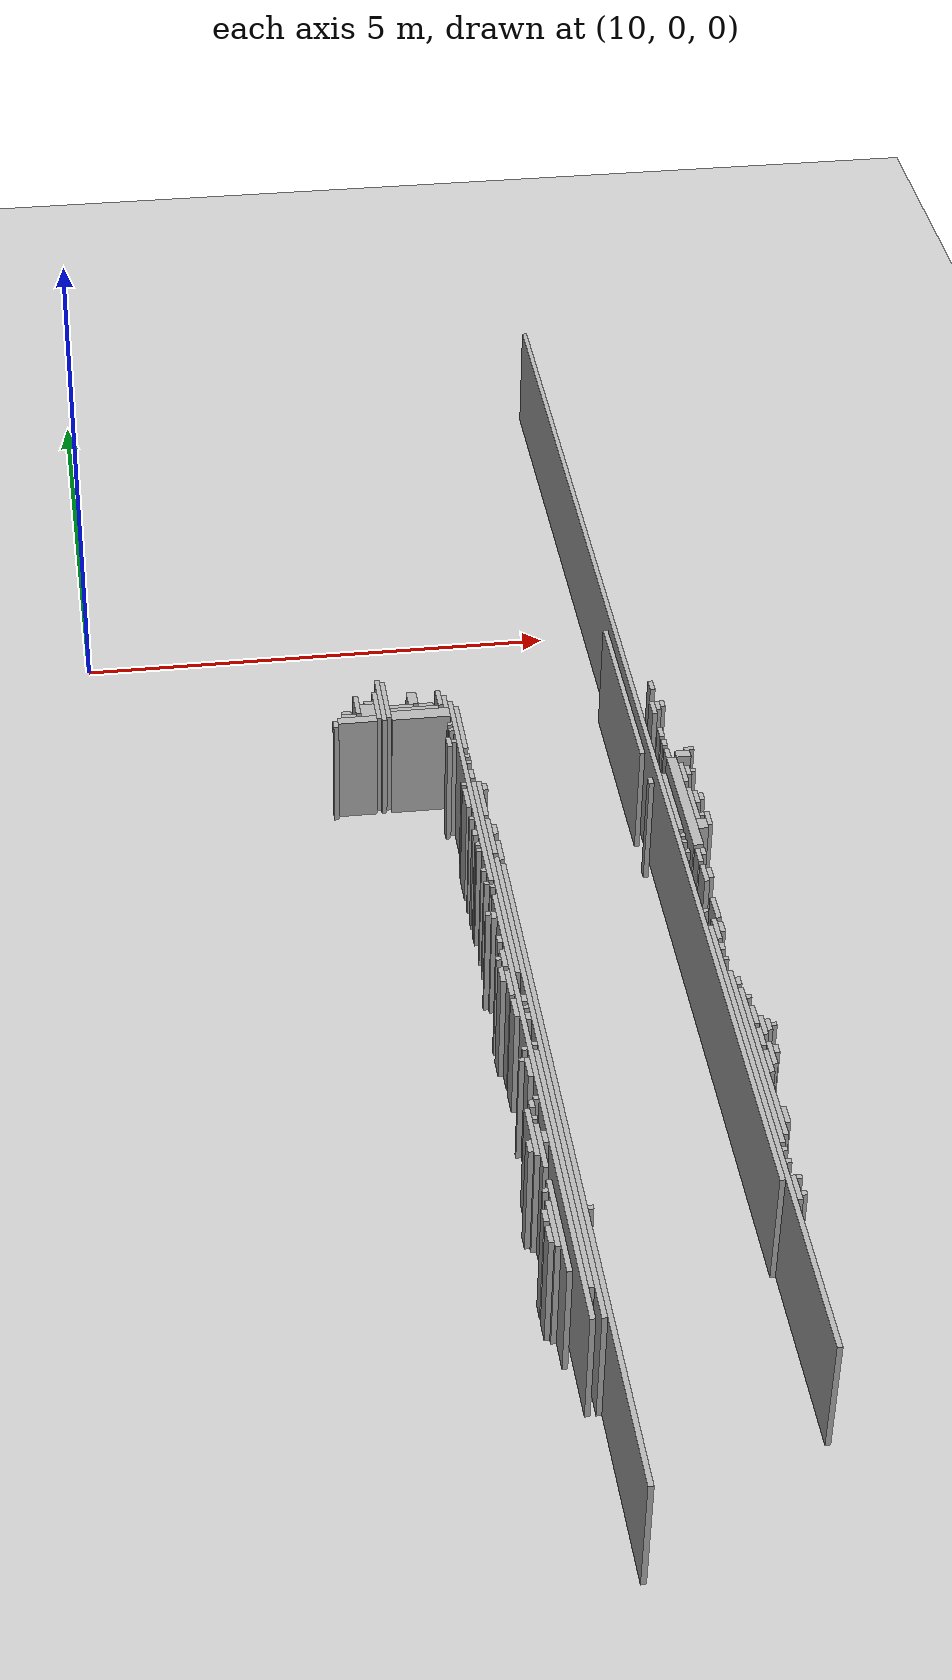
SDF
<sdf version="1.6">
 <world name="d10_floor">
  <include><uri>model://sun</uri></include>
  <include><uri>model://ground_plane</uri></include>
  <model name="d10_walls">
   <static>true</static>
   <link name="w856">
    <pose>13.750 -9.120 0.60 0 0 0</pose>
    <collision name="c"><geometry><box><size>0.050 7.750 1.20</size></box></geometry></collision>
    <visual name="v">
     <geometry><box><size>0.050 7.750 1.20</size></box></geometry>
     <material><ambient>0.6 0.6 0.6 1</ambient><diffuse>0.7 0.7 0.7 1</diffuse></material>
    </visual>
   </link>
   <link name="w945">
    <pose>15.550 -9.070 0.60 0 0 0</pose>
    <collision name="c"><geometry><box><size>0.050 5.350 1.20</size></box></geometry></collision>
    <visual name="v">
     <geometry><box><size>0.050 5.350 1.20</size></box></geometry>
     <material><ambient>0.6 0.6 0.6 1</ambient><diffuse>0.7 0.7 0.7 1</diffuse></material>
    </visual>
   </link>
   <link name="w999">
    <pose>13.600 -8.445 0.60 0 0 0</pose>
    <collision name="c"><geometry><box><size>0.050 5.500 1.20</size></box></geometry></collision>
    <visual name="v">
     <geometry><box><size>0.050 5.500 1.20</size></box></geometry>
     <material><ambient>0.6 0.6 0.6 1</ambient><diffuse>0.7 0.7 0.7 1</diffuse></material>
    </visual>
   </link>
   <link name="w1000">
    <pose>13.700 -8.170 0.60 0 0 0</pose>
    <collision name="c"><geometry><box><size>0.050 6.050 1.20</size></box></geometry></collision>
    <visual name="v">
     <geometry><box><size>0.050 6.050 1.20</size></box></geometry>
     <material><ambient>0.6 0.6 0.6 1</ambient><diffuse>0.7 0.7 0.7 1</diffuse></material>
    </visual>
   </link>
   <link name="w1030">
    <pose>13.650 -9.370 0.60 0 0 0</pose>
    <collision name="c"><geometry><box><size>0.050 2.950 1.20</size></box></geometry></collision>
    <visual name="v">
     <geometry><box><size>0.050 2.950 1.20</size></box></geometry>
     <material><ambient>0.6 0.6 0.6 1</ambient><diffuse>0.7 0.7 0.7 1</diffuse></material>
    </visual>
   </link>
   <link name="w1036">
    <pose>13.500 -10.095 0.60 0 0 0</pose>
    <collision name="c"><geometry><box><size>0.050 1.100 1.20</size></box></geometry></collision>
    <visual name="v">
     <geometry><box><size>0.050 1.100 1.20</size></box></geometry>
     <material><ambient>0.6 0.6 0.6 1</ambient><diffuse>0.7 0.7 0.7 1</diffuse></material>
    </visual>
   </link>
   <link name="w1037">
    <pose>13.450 -10.070 0.60 0 0 0</pose>
    <collision name="c"><geometry><box><size>0.050 0.550 1.20</size></box></geometry></collision>
    <visual name="v">
     <geometry><box><size>0.050 0.550 1.20</size></box></geometry>
     <material><ambient>0.6 0.6 0.6 1</ambient><diffuse>0.7 0.7 0.7 1</diffuse></material>
    </visual>
   </link>
   <link name="w1040">
    <pose>13.400 -10.195 0.60 0 0 0</pose>
    <collision name="c"><geometry><box><size>0.050 0.200 1.20</size></box></geometry></collision>
    <visual name="v">
     <geometry><box><size>0.050 0.200 1.20</size></box></geometry>
     <material><ambient>0.6 0.6 0.6 1</ambient><diffuse>0.7 0.7 0.7 1</diffuse></material>
    </visual>
   </link>
   <link name="w1044">
    <pose>13.400 -9.970 0.60 0 0 0</pose>
    <collision name="c"><geometry><box><size>0.050 0.150 1.20</size></box></geometry></collision>
    <visual name="v">
     <geometry><box><size>0.050 0.150 1.20</size></box></geometry>
     <material><ambient>0.6 0.6 0.6 1</ambient><diffuse>0.7 0.7 0.7 1</diffuse></material>
    </visual>
   </link>
   <link name="w1045">
    <pose>15.600 -9.895 0.60 0 0 0</pose>
    <collision name="c"><geometry><box><size>0.050 0.300 1.20</size></box></geometry></collision>
    <visual name="v">
     <geometry><box><size>0.050 0.300 1.20</size></box></geometry>
     <material><ambient>0.6 0.6 0.6 1</ambient><diffuse>0.7 0.7 0.7 1</diffuse></material>
    </visual>
   </link>
   <link name="w1046">
    <pose>15.650 -9.970 0.60 0 0 0</pose>
    <collision name="c"><geometry><box><size>0.050 0.050 1.20</size></box></geometry></collision>
    <visual name="v">
     <geometry><box><size>0.050 0.050 1.20</size></box></geometry>
     <material><ambient>0.6 0.6 0.6 1</ambient><diffuse>0.7 0.7 0.7 1</diffuse></material>
    </visual>
   </link>
   <link name="w1047">
    <pose>13.800 -9.920 0.60 0 0 0</pose>
    <collision name="c"><geometry><box><size>0.050 0.050 1.20</size></box></geometry></collision>
    <visual name="v">
     <geometry><box><size>0.050 0.050 1.20</size></box></geometry>
     <material><ambient>0.6 0.6 0.6 1</ambient><diffuse>0.7 0.7 0.7 1</diffuse></material>
    </visual>
   </link>
   <link name="w1049">
    <pose>15.500 -2.595 0.60 0 0 0</pose>
    <collision name="c"><geometry><box><size>0.050 14.400 1.20</size></box></geometry></collision>
    <visual name="v">
     <geometry><box><size>0.050 14.400 1.20</size></box></geometry>
     <material><ambient>0.6 0.6 0.6 1</ambient><diffuse>0.7 0.7 0.7 1</diffuse></material>
    </visual>
   </link>
   <link name="w1050">
    <pose>15.650 -9.770 0.60 0 0 0</pose>
    <collision name="c"><geometry><box><size>0.050 0.050 1.20</size></box></geometry></collision>
    <visual name="v">
     <geometry><box><size>0.050 0.050 1.20</size></box></geometry>
     <material><ambient>0.6 0.6 0.6 1</ambient><diffuse>0.7 0.7 0.7 1</diffuse></material>
    </visual>
   </link>
   <link name="w1054">
    <pose>13.450 -9.670 0.60 0 0 0</pose>
    <collision name="c"><geometry><box><size>0.050 0.050 1.20</size></box></geometry></collision>
    <visual name="v">
     <geometry><box><size>0.050 0.050 1.20</size></box></geometry>
     <material><ambient>0.6 0.6 0.6 1</ambient><diffuse>0.7 0.7 0.7 1</diffuse></material>
    </visual>
   </link>
   <link name="w1056">
    <pose>15.600 -9.570 0.60 0 0 0</pose>
    <collision name="c"><geometry><box><size>0.050 0.050 1.20</size></box></geometry></collision>
    <visual name="v">
     <geometry><box><size>0.050 0.050 1.20</size></box></geometry>
     <material><ambient>0.6 0.6 0.6 1</ambient><diffuse>0.7 0.7 0.7 1</diffuse></material>
    </visual>
   </link>
   <link name="w1057">
    <pose>15.600 -9.420 0.60 0 0 0</pose>
    <collision name="c"><geometry><box><size>0.050 0.050 1.20</size></box></geometry></collision>
    <visual name="v">
     <geometry><box><size>0.050 0.050 1.20</size></box></geometry>
     <material><ambient>0.6 0.6 0.6 1</ambient><diffuse>0.7 0.7 0.7 1</diffuse></material>
    </visual>
   </link>
   <link name="w1059">
    <pose>13.500 -9.120 0.60 0 0 0</pose>
    <collision name="c"><geometry><box><size>0.050 0.550 1.20</size></box></geometry></collision>
    <visual name="v">
     <geometry><box><size>0.050 0.550 1.20</size></box></geometry>
     <material><ambient>0.6 0.6 0.6 1</ambient><diffuse>0.7 0.7 0.7 1</diffuse></material>
    </visual>
   </link>
   <link name="w1060">
    <pose>15.600 -8.195 0.60 0 0 0</pose>
    <collision name="c"><geometry><box><size>0.050 2.300 1.20</size></box></geometry></collision>
    <visual name="v">
     <geometry><box><size>0.050 2.300 1.20</size></box></geometry>
     <material><ambient>0.6 0.6 0.6 1</ambient><diffuse>0.7 0.7 0.7 1</diffuse></material>
    </visual>
   </link>
   <link name="w1061">
    <pose>13.450 -8.945 0.60 0 0 0</pose>
    <collision name="c"><geometry><box><size>0.050 0.600 1.20</size></box></geometry></collision>
    <visual name="v">
     <geometry><box><size>0.050 0.600 1.20</size></box></geometry>
     <material><ambient>0.6 0.6 0.6 1</ambient><diffuse>0.7 0.7 0.7 1</diffuse></material>
    </visual>
   </link>
   <link name="w1062">
    <pose>15.650 -8.270 0.60 0 0 0</pose>
    <collision name="c"><geometry><box><size>0.050 1.950 1.20</size></box></geometry></collision>
    <visual name="v">
     <geometry><box><size>0.050 1.950 1.20</size></box></geometry>
     <material><ambient>0.6 0.6 0.6 1</ambient><diffuse>0.7 0.7 0.7 1</diffuse></material>
    </visual>
   </link>
   <link name="w1063">
    <pose>13.400 -9.120 0.60 0 0 0</pose>
    <collision name="c"><geometry><box><size>0.050 0.150 1.20</size></box></geometry></collision>
    <visual name="v">
     <geometry><box><size>0.050 0.150 1.20</size></box></geometry>
     <material><ambient>0.6 0.6 0.6 1</ambient><diffuse>0.7 0.7 0.7 1</diffuse></material>
    </visual>
   </link>
   <link name="w1064">
    <pose>13.550 -9.020 0.60 0 0 0</pose>
    <collision name="c"><geometry><box><size>0.050 0.150 1.20</size></box></geometry></collision>
    <visual name="v">
     <geometry><box><size>0.050 0.150 1.20</size></box></geometry>
     <material><ambient>0.6 0.6 0.6 1</ambient><diffuse>0.7 0.7 0.7 1</diffuse></material>
    </visual>
   </link>
   <link name="w1065">
    <pose>15.700 -8.995 0.60 0 0 0</pose>
    <collision name="c"><geometry><box><size>0.050 0.200 1.20</size></box></geometry></collision>
    <visual name="v">
     <geometry><box><size>0.050 0.200 1.20</size></box></geometry>
     <material><ambient>0.6 0.6 0.6 1</ambient><diffuse>0.7 0.7 0.7 1</diffuse></material>
    </visual>
   </link>
   <link name="w1067">
    <pose>13.500 -8.770 0.60 0 0 0</pose>
    <collision name="c"><geometry><box><size>0.050 0.050 1.20</size></box></geometry></collision>
    <visual name="v">
     <geometry><box><size>0.050 0.050 1.20</size></box></geometry>
     <material><ambient>0.6 0.6 0.6 1</ambient><diffuse>0.7 0.7 0.7 1</diffuse></material>
    </visual>
   </link>
   <link name="w1069">
    <pose>13.500 -8.595 0.60 0 0 0</pose>
    <collision name="c"><geometry><box><size>0.050 0.100 1.20</size></box></geometry></collision>
    <visual name="v">
     <geometry><box><size>0.050 0.100 1.20</size></box></geometry>
     <material><ambient>0.6 0.6 0.6 1</ambient><diffuse>0.7 0.7 0.7 1</diffuse></material>
    </visual>
   </link>
   <link name="w1070">
    <pose>13.550 -8.520 0.60 0 0 0</pose>
    <collision name="c"><geometry><box><size>0.050 0.050 1.20</size></box></geometry></collision>
    <visual name="v">
     <geometry><box><size>0.050 0.050 1.20</size></box></geometry>
     <material><ambient>0.6 0.6 0.6 1</ambient><diffuse>0.7 0.7 0.7 1</diffuse></material>
    </visual>
   </link>
   <link name="w1072">
    <pose>15.700 -8.295 0.60 0 0 0</pose>
    <collision name="c"><geometry><box><size>0.050 0.300 1.20</size></box></geometry></collision>
    <visual name="v">
     <geometry><box><size>0.050 0.300 1.20</size></box></geometry>
     <material><ambient>0.6 0.6 0.6 1</ambient><diffuse>0.7 0.7 0.7 1</diffuse></material>
    </visual>
   </link>
   <link name="w1073">
    <pose>15.750 -8.195 0.60 0 0 0</pose>
    <collision name="c"><geometry><box><size>0.050 0.300 1.20</size></box></geometry></collision>
    <visual name="v">
     <geometry><box><size>0.050 0.300 1.20</size></box></geometry>
     <material><ambient>0.6 0.6 0.6 1</ambient><diffuse>0.7 0.7 0.7 1</diffuse></material>
    </visual>
   </link>
   <link name="w1074">
    <pose>13.550 -8.120 0.60 0 0 0</pose>
    <collision name="c"><geometry><box><size>0.050 0.250 1.20</size></box></geometry></collision>
    <visual name="v">
     <geometry><box><size>0.050 0.250 1.20</size></box></geometry>
     <material><ambient>0.6 0.6 0.6 1</ambient><diffuse>0.7 0.7 0.7 1</diffuse></material>
    </visual>
   </link>
   <link name="w1075">
    <pose>15.800 -8.145 0.60 0 0 0</pose>
    <collision name="c"><geometry><box><size>0.050 0.100 1.20</size></box></geometry></collision>
    <visual name="v">
     <geometry><box><size>0.050 0.100 1.20</size></box></geometry>
     <material><ambient>0.6 0.6 0.6 1</ambient><diffuse>0.7 0.7 0.7 1</diffuse></material>
    </visual>
   </link>
   <link name="w1076">
    <pose>15.700 -7.970 0.60 0 0 0</pose>
    <collision name="c"><geometry><box><size>0.050 0.250 1.20</size></box></geometry></collision>
    <visual name="v">
     <geometry><box><size>0.050 0.250 1.20</size></box></geometry>
     <material><ambient>0.6 0.6 0.6 1</ambient><diffuse>0.7 0.7 0.7 1</diffuse></material>
    </visual>
   </link>
   <link name="w1077">
    <pose>13.500 -8.020 0.60 0 0 0</pose>
    <collision name="c"><geometry><box><size>0.050 0.050 1.20</size></box></geometry></collision>
    <visual name="v">
     <geometry><box><size>0.050 0.050 1.20</size></box></geometry>
     <material><ambient>0.6 0.6 0.6 1</ambient><diffuse>0.7 0.7 0.7 1</diffuse></material>
    </visual>
   </link>
   <link name="w1080">
    <pose>15.750 -7.820 0.60 0 0 0</pose>
    <collision name="c"><geometry><box><size>0.050 0.250 1.20</size></box></geometry></collision>
    <visual name="v">
     <geometry><box><size>0.050 0.250 1.20</size></box></geometry>
     <material><ambient>0.6 0.6 0.6 1</ambient><diffuse>0.7 0.7 0.7 1</diffuse></material>
    </visual>
   </link>
   <link name="w1082">
    <pose>13.550 -7.870 0.60 0 0 0</pose>
    <collision name="c"><geometry><box><size>0.050 0.050 1.20</size></box></geometry></collision>
    <visual name="v">
     <geometry><box><size>0.050 0.050 1.20</size></box></geometry>
     <material><ambient>0.6 0.6 0.6 1</ambient><diffuse>0.7 0.7 0.7 1</diffuse></material>
    </visual>
   </link>
   <link name="w1083">
    <pose>15.800 -7.820 0.60 0 0 0</pose>
    <collision name="c"><geometry><box><size>0.050 0.150 1.20</size></box></geometry></collision>
    <visual name="v">
     <geometry><box><size>0.050 0.150 1.20</size></box></geometry>
     <material><ambient>0.6 0.6 0.6 1</ambient><diffuse>0.7 0.7 0.7 1</diffuse></material>
    </visual>
   </link>
   <link name="w1084">
    <pose>13.650 -7.820 0.60 0 0 0</pose>
    <collision name="c"><geometry><box><size>0.050 0.050 1.20</size></box></geometry></collision>
    <visual name="v">
     <geometry><box><size>0.050 0.050 1.20</size></box></geometry>
     <material><ambient>0.6 0.6 0.6 1</ambient><diffuse>0.7 0.7 0.7 1</diffuse></material>
    </visual>
   </link>
   <link name="w1085">
    <pose>15.850 -7.820 0.60 0 0 0</pose>
    <collision name="c"><geometry><box><size>0.050 0.050 1.20</size></box></geometry></collision>
    <visual name="v">
     <geometry><box><size>0.050 0.050 1.20</size></box></geometry>
     <material><ambient>0.6 0.6 0.6 1</ambient><diffuse>0.7 0.7 0.7 1</diffuse></material>
    </visual>
   </link>
   <link name="w1086">
    <pose>15.700 -7.670 0.60 0 0 0</pose>
    <collision name="c"><geometry><box><size>0.050 0.250 1.20</size></box></geometry></collision>
    <visual name="v">
     <geometry><box><size>0.050 0.250 1.20</size></box></geometry>
     <material><ambient>0.6 0.6 0.6 1</ambient><diffuse>0.7 0.7 0.7 1</diffuse></material>
    </visual>
   </link>
   <link name="w1091">
    <pose>13.650 -7.445 0.60 0 0 0</pose>
    <collision name="c"><geometry><box><size>0.050 0.100 1.20</size></box></geometry></collision>
    <visual name="v">
     <geometry><box><size>0.050 0.100 1.20</size></box></geometry>
     <material><ambient>0.6 0.6 0.6 1</ambient><diffuse>0.7 0.7 0.7 1</diffuse></material>
    </visual>
   </link>
   <link name="w1092">
    <pose>13.550 -7.320 0.60 0 0 0</pose>
    <collision name="c"><geometry><box><size>0.050 0.250 1.20</size></box></geometry></collision>
    <visual name="v">
     <geometry><box><size>0.050 0.250 1.20</size></box></geometry>
     <material><ambient>0.6 0.6 0.6 1</ambient><diffuse>0.7 0.7 0.7 1</diffuse></material>
    </visual>
   </link>
   <link name="w1093">
    <pose>15.700 -7.420 0.60 0 0 0</pose>
    <collision name="c"><geometry><box><size>0.050 0.050 1.20</size></box></geometry></collision>
    <visual name="v">
     <geometry><box><size>0.050 0.050 1.20</size></box></geometry>
     <material><ambient>0.6 0.6 0.6 1</ambient><diffuse>0.7 0.7 0.7 1</diffuse></material>
    </visual>
   </link>
   <link name="w1096">
    <pose>13.650 -7.320 0.60 0 0 0</pose>
    <collision name="c"><geometry><box><size>0.050 0.050 1.20</size></box></geometry></collision>
    <visual name="v">
     <geometry><box><size>0.050 0.050 1.20</size></box></geometry>
     <material><ambient>0.6 0.6 0.6 1</ambient><diffuse>0.7 0.7 0.7 1</diffuse></material>
    </visual>
   </link>
   <link name="w1099">
    <pose>13.650 -7.195 0.60 0 0 0</pose>
    <collision name="c"><geometry><box><size>0.050 0.100 1.20</size></box></geometry></collision>
    <visual name="v">
     <geometry><box><size>0.050 0.100 1.20</size></box></geometry>
     <material><ambient>0.6 0.6 0.6 1</ambient><diffuse>0.7 0.7 0.7 1</diffuse></material>
    </visual>
   </link>
   <link name="w1100">
    <pose>15.650 -7.195 0.60 0 0 0</pose>
    <collision name="c"><geometry><box><size>0.050 0.100 1.20</size></box></geometry></collision>
    <visual name="v">
     <geometry><box><size>0.050 0.100 1.20</size></box></geometry>
     <material><ambient>0.6 0.6 0.6 1</ambient><diffuse>0.7 0.7 0.7 1</diffuse></material>
    </visual>
   </link>
   <link name="w1102">
    <pose>13.550 -6.970 0.60 0 0 0</pose>
    <collision name="c"><geometry><box><size>0.050 0.350 1.20</size></box></geometry></collision>
    <visual name="v">
     <geometry><box><size>0.050 0.350 1.20</size></box></geometry>
     <material><ambient>0.6 0.6 0.6 1</ambient><diffuse>0.7 0.7 0.7 1</diffuse></material>
    </visual>
   </link>
   <link name="w1106">
    <pose>13.500 -6.845 0.60 0 0 0</pose>
    <collision name="c"><geometry><box><size>0.050 0.200 1.20</size></box></geometry></collision>
    <visual name="v">
     <geometry><box><size>0.050 0.200 1.20</size></box></geometry>
     <material><ambient>0.6 0.6 0.6 1</ambient><diffuse>0.7 0.7 0.7 1</diffuse></material>
    </visual>
   </link>
   <link name="w1107">
    <pose>15.600 -6.870 0.60 0 0 0</pose>
    <collision name="c"><geometry><box><size>0.050 0.050 1.20</size></box></geometry></collision>
    <visual name="v">
     <geometry><box><size>0.050 0.050 1.20</size></box></geometry>
     <material><ambient>0.6 0.6 0.6 1</ambient><diffuse>0.7 0.7 0.7 1</diffuse></material>
    </visual>
   </link>
   <link name="w1108">
    <pose>13.650 -5.395 0.60 0 0 0</pose>
    <collision name="c"><geometry><box><size>0.050 2.900 1.20</size></box></geometry></collision>
    <visual name="v">
     <geometry><box><size>0.050 2.900 1.20</size></box></geometry>
     <material><ambient>0.6 0.6 0.6 1</ambient><diffuse>0.7 0.7 0.7 1</diffuse></material>
    </visual>
   </link>
   <link name="w1110">
    <pose>13.550 -6.620 0.60 0 0 0</pose>
    <collision name="c"><geometry><box><size>0.050 0.250 1.20</size></box></geometry></collision>
    <visual name="v">
     <geometry><box><size>0.050 0.250 1.20</size></box></geometry>
     <material><ambient>0.6 0.6 0.6 1</ambient><diffuse>0.7 0.7 0.7 1</diffuse></material>
    </visual>
   </link>
   <link name="w1111">
    <pose>15.600 -6.695 0.60 0 0 0</pose>
    <collision name="c"><geometry><box><size>0.050 0.100 1.20</size></box></geometry></collision>
    <visual name="v">
     <geometry><box><size>0.050 0.100 1.20</size></box></geometry>
     <material><ambient>0.6 0.6 0.6 1</ambient><diffuse>0.7 0.7 0.7 1</diffuse></material>
    </visual>
   </link>
   <link name="w1113">
    <pose>13.500 -6.620 0.60 0 0 0</pose>
    <collision name="c"><geometry><box><size>0.050 0.050 1.20</size></box></geometry></collision>
    <visual name="v">
     <geometry><box><size>0.050 0.050 1.20</size></box></geometry>
     <material><ambient>0.6 0.6 0.6 1</ambient><diffuse>0.7 0.7 0.7 1</diffuse></material>
    </visual>
   </link>
   <link name="w1114">
    <pose>15.600 -6.445 0.60 0 0 0</pose>
    <collision name="c"><geometry><box><size>0.050 0.300 1.20</size></box></geometry></collision>
    <visual name="v">
     <geometry><box><size>0.050 0.300 1.20</size></box></geometry>
     <material><ambient>0.6 0.6 0.6 1</ambient><diffuse>0.7 0.7 0.7 1</diffuse></material>
    </visual>
   </link>
   <link name="w1115">
    <pose>15.650 -6.420 0.60 0 0 0</pose>
    <collision name="c"><geometry><box><size>0.050 0.150 1.20</size></box></geometry></collision>
    <visual name="v">
     <geometry><box><size>0.050 0.150 1.20</size></box></geometry>
     <material><ambient>0.6 0.6 0.6 1</ambient><diffuse>0.7 0.7 0.7 1</diffuse></material>
    </visual>
   </link>
   <link name="w1117">
    <pose>13.550 -6.345 0.60 0 0 0</pose>
    <collision name="c"><geometry><box><size>0.050 0.100 1.20</size></box></geometry></collision>
    <visual name="v">
     <geometry><box><size>0.050 0.100 1.20</size></box></geometry>
     <material><ambient>0.6 0.6 0.6 1</ambient><diffuse>0.7 0.7 0.7 1</diffuse></material>
    </visual>
   </link>
   <link name="w1119">
    <pose>15.650 -6.145 0.60 0 0 0</pose>
    <collision name="c"><geometry><box><size>0.050 0.300 1.20</size></box></geometry></collision>
    <visual name="v">
     <geometry><box><size>0.050 0.300 1.20</size></box></geometry>
     <material><ambient>0.6 0.6 0.6 1</ambient><diffuse>0.7 0.7 0.7 1</diffuse></material>
    </visual>
   </link>
   <link name="w1121">
    <pose>15.550 -6.170 0.60 0 0 0</pose>
    <collision name="c"><geometry><box><size>0.050 0.050 1.20</size></box></geometry></collision>
    <visual name="v">
     <geometry><box><size>0.050 0.050 1.20</size></box></geometry>
     <material><ambient>0.6 0.6 0.6 1</ambient><diffuse>0.7 0.7 0.7 1</diffuse></material>
    </visual>
   </link>
   <link name="w1125">
    <pose>13.550 -5.995 0.60 0 0 0</pose>
    <collision name="c"><geometry><box><size>0.050 0.100 1.20</size></box></geometry></collision>
    <visual name="v">
     <geometry><box><size>0.050 0.100 1.20</size></box></geometry>
     <material><ambient>0.6 0.6 0.6 1</ambient><diffuse>0.7 0.7 0.7 1</diffuse></material>
    </visual>
   </link>
   <link name="w1127">
    <pose>13.500 -5.970 0.60 0 0 0</pose>
    <collision name="c"><geometry><box><size>0.050 0.050 1.20</size></box></geometry></collision>
    <visual name="v">
     <geometry><box><size>0.050 0.050 1.20</size></box></geometry>
     <material><ambient>0.6 0.6 0.6 1</ambient><diffuse>0.7 0.7 0.7 1</diffuse></material>
    </visual>
   </link>
   <link name="w1132">
    <pose>15.650 -5.620 0.60 0 0 0</pose>
    <collision name="c"><geometry><box><size>0.050 0.250 1.20</size></box></geometry></collision>
    <visual name="v">
     <geometry><box><size>0.050 0.250 1.20</size></box></geometry>
     <material><ambient>0.6 0.6 0.6 1</ambient><diffuse>0.7 0.7 0.7 1</diffuse></material>
    </visual>
   </link>
   <link name="w1133">
    <pose>15.700 -5.620 0.60 0 0 0</pose>
    <collision name="c"><geometry><box><size>0.050 0.150 1.20</size></box></geometry></collision>
    <visual name="v">
     <geometry><box><size>0.050 0.150 1.20</size></box></geometry>
     <material><ambient>0.6 0.6 0.6 1</ambient><diffuse>0.7 0.7 0.7 1</diffuse></material>
    </visual>
   </link>
   <link name="w1134">
    <pose>13.600 -5.570 0.60 0 0 0</pose>
    <collision name="c"><geometry><box><size>0.050 0.050 1.20</size></box></geometry></collision>
    <visual name="v">
     <geometry><box><size>0.050 0.050 1.20</size></box></geometry>
     <material><ambient>0.6 0.6 0.6 1</ambient><diffuse>0.7 0.7 0.7 1</diffuse></material>
    </visual>
   </link>
   <link name="w1136">
    <pose>13.550 -5.520 0.60 0 0 0</pose>
    <collision name="c"><geometry><box><size>0.050 0.050 1.20</size></box></geometry></collision>
    <visual name="v">
     <geometry><box><size>0.050 0.050 1.20</size></box></geometry>
     <material><ambient>0.6 0.6 0.6 1</ambient><diffuse>0.7 0.7 0.7 1</diffuse></material>
    </visual>
   </link>
   <link name="w1138">
    <pose>13.600 -4.045 0.60 0 0 0</pose>
    <collision name="c"><geometry><box><size>0.050 2.900 1.20</size></box></geometry></collision>
    <visual name="v">
     <geometry><box><size>0.050 2.900 1.20</size></box></geometry>
     <material><ambient>0.6 0.6 0.6 1</ambient><diffuse>0.7 0.7 0.7 1</diffuse></material>
    </visual>
   </link>
   <link name="w1140">
    <pose>15.650 -5.345 0.60 0 0 0</pose>
    <collision name="c"><geometry><box><size>0.050 0.200 1.20</size></box></geometry></collision>
    <visual name="v">
     <geometry><box><size>0.050 0.200 1.20</size></box></geometry>
     <material><ambient>0.6 0.6 0.6 1</ambient><diffuse>0.7 0.7 0.7 1</diffuse></material>
    </visual>
   </link>
   <link name="w1143">
    <pose>13.550 -5.320 0.60 0 0 0</pose>
    <collision name="c"><geometry><box><size>0.050 0.050 1.20</size></box></geometry></collision>
    <visual name="v">
     <geometry><box><size>0.050 0.050 1.20</size></box></geometry>
     <material><ambient>0.6 0.6 0.6 1</ambient><diffuse>0.7 0.7 0.7 1</diffuse></material>
    </visual>
   </link>
   <link name="w1144">
    <pose>15.700 -5.295 0.60 0 0 0</pose>
    <collision name="c"><geometry><box><size>0.050 0.100 1.20</size></box></geometry></collision>
    <visual name="v">
     <geometry><box><size>0.050 0.100 1.20</size></box></geometry>
     <material><ambient>0.6 0.6 0.6 1</ambient><diffuse>0.7 0.7 0.7 1</diffuse></material>
    </visual>
   </link>
   <link name="w1145">
    <pose>15.550 -5.270 0.60 0 0 0</pose>
    <collision name="c"><geometry><box><size>0.050 0.050 1.20</size></box></geometry></collision>
    <visual name="v">
     <geometry><box><size>0.050 0.050 1.20</size></box></geometry>
     <material><ambient>0.6 0.6 0.6 1</ambient><diffuse>0.7 0.7 0.7 1</diffuse></material>
    </visual>
   </link>
   <link name="w1146">
    <pose>13.750 -5.045 0.60 0 0 0</pose>
    <collision name="c"><geometry><box><size>0.050 0.300 1.20</size></box></geometry></collision>
    <visual name="v">
     <geometry><box><size>0.050 0.300 1.20</size></box></geometry>
     <material><ambient>0.6 0.6 0.6 1</ambient><diffuse>0.7 0.7 0.7 1</diffuse></material>
    </visual>
   </link>
   <link name="w1147">
    <pose>15.675 -4.495 0.60 0 0 0</pose>
    <collision name="c"><geometry><box><size>0.100 1.400 1.20</size></box></geometry></collision>
    <visual name="v">
     <geometry><box><size>0.100 1.400 1.20</size></box></geometry>
     <material><ambient>0.6 0.6 0.6 1</ambient><diffuse>0.7 0.7 0.7 1</diffuse></material>
    </visual>
   </link>
   <link name="w1148">
    <pose>15.550 -5.120 0.60 0 0 0</pose>
    <collision name="c"><geometry><box><size>0.050 0.050 1.20</size></box></geometry></collision>
    <visual name="v">
     <geometry><box><size>0.050 0.050 1.20</size></box></geometry>
     <material><ambient>0.6 0.6 0.6 1</ambient><diffuse>0.7 0.7 0.7 1</diffuse></material>
    </visual>
   </link>
   <link name="w1149">
    <pose>13.700 -4.820 0.60 0 0 0</pose>
    <collision name="c"><geometry><box><size>0.050 0.550 1.20</size></box></geometry></collision>
    <visual name="v">
     <geometry><box><size>0.050 0.550 1.20</size></box></geometry>
     <material><ambient>0.6 0.6 0.6 1</ambient><diffuse>0.7 0.7 0.7 1</diffuse></material>
    </visual>
   </link>
   <link name="w1150">
    <pose>13.550 -5.020 0.60 0 0 0</pose>
    <collision name="c"><geometry><box><size>0.050 0.050 1.20</size></box></geometry></collision>
    <visual name="v">
     <geometry><box><size>0.050 0.050 1.20</size></box></geometry>
     <material><ambient>0.6 0.6 0.6 1</ambient><diffuse>0.7 0.7 0.7 1</diffuse></material>
    </visual>
   </link>
   <link name="w1151">
    <pose>15.550 -5.020 0.60 0 0 0</pose>
    <collision name="c"><geometry><box><size>0.050 0.050 1.20</size></box></geometry></collision>
    <visual name="v">
     <geometry><box><size>0.050 0.050 1.20</size></box></geometry>
     <material><ambient>0.6 0.6 0.6 1</ambient><diffuse>0.7 0.7 0.7 1</diffuse></material>
    </visual>
   </link>
   <link name="w1153">
    <pose>13.550 -4.920 0.60 0 0 0</pose>
    <collision name="c"><geometry><box><size>0.050 0.050 1.20</size></box></geometry></collision>
    <visual name="v">
     <geometry><box><size>0.050 0.050 1.20</size></box></geometry>
     <material><ambient>0.6 0.6 0.6 1</ambient><diffuse>0.7 0.7 0.7 1</diffuse></material>
    </visual>
   </link>
   <link name="w1154">
    <pose>15.550 -4.495 0.60 0 0 0</pose>
    <collision name="c"><geometry><box><size>0.050 0.900 1.20</size></box></geometry></collision>
    <visual name="v">
     <geometry><box><size>0.050 0.900 1.20</size></box></geometry>
     <material><ambient>0.6 0.6 0.6 1</ambient><diffuse>0.7 0.7 0.7 1</diffuse></material>
    </visual>
   </link>
   <link name="w1155">
    <pose>15.775 -4.870 0.60 0 0 0</pose>
    <collision name="c"><geometry><box><size>0.100 0.150 1.20</size></box></geometry></collision>
    <visual name="v">
     <geometry><box><size>0.100 0.150 1.20</size></box></geometry>
     <material><ambient>0.6 0.6 0.6 1</ambient><diffuse>0.7 0.7 0.7 1</diffuse></material>
    </visual>
   </link>
   <link name="w1157">
    <pose>15.850 -4.795 0.60 0 0 0</pose>
    <collision name="c"><geometry><box><size>0.050 0.200 1.20</size></box></geometry></collision>
    <visual name="v">
     <geometry><box><size>0.050 0.200 1.20</size></box></geometry>
     <material><ambient>0.6 0.6 0.6 1</ambient><diffuse>0.7 0.7 0.7 1</diffuse></material>
    </visual>
   </link>
   <link name="w1159">
    <pose>13.550 -4.745 0.60 0 0 0</pose>
    <collision name="c"><geometry><box><size>0.050 0.100 1.20</size></box></geometry></collision>
    <visual name="v">
     <geometry><box><size>0.050 0.100 1.20</size></box></geometry>
     <material><ambient>0.6 0.6 0.6 1</ambient><diffuse>0.7 0.7 0.7 1</diffuse></material>
    </visual>
   </link>
   <link name="w1160">
    <pose>13.750 -4.720 0.60 0 0 0</pose>
    <collision name="c"><geometry><box><size>0.050 0.150 1.20</size></box></geometry></collision>
    <visual name="v">
     <geometry><box><size>0.050 0.150 1.20</size></box></geometry>
     <material><ambient>0.6 0.6 0.6 1</ambient><diffuse>0.7 0.7 0.7 1</diffuse></material>
    </visual>
   </link>
   <link name="w1161">
    <pose>15.750 -4.545 0.60 0 0 0</pose>
    <collision name="c"><geometry><box><size>0.050 0.500 1.20</size></box></geometry></collision>
    <visual name="v">
     <geometry><box><size>0.050 0.500 1.20</size></box></geometry>
     <material><ambient>0.6 0.6 0.6 1</ambient><diffuse>0.7 0.7 0.7 1</diffuse></material>
    </visual>
   </link>
   <link name="w1164">
    <pose>15.800 -4.720 0.60 0 0 0</pose>
    <collision name="c"><geometry><box><size>0.050 0.050 1.20</size></box></geometry></collision>
    <visual name="v">
     <geometry><box><size>0.050 0.050 1.20</size></box></geometry>
     <material><ambient>0.6 0.6 0.6 1</ambient><diffuse>0.7 0.7 0.7 1</diffuse></material>
    </visual>
   </link>
   <link name="w1168">
    <pose>13.550 -4.520 0.60 0 0 0</pose>
    <collision name="c"><geometry><box><size>0.050 0.050 1.20</size></box></geometry></collision>
    <visual name="v">
     <geometry><box><size>0.050 0.050 1.20</size></box></geometry>
     <material><ambient>0.6 0.6 0.6 1</ambient><diffuse>0.7 0.7 0.7 1</diffuse></material>
    </visual>
   </link>
   <link name="w1169">
    <pose>15.800 -4.445 0.60 0 0 0</pose>
    <collision name="c"><geometry><box><size>0.050 0.200 1.20</size></box></geometry></collision>
    <visual name="v">
     <geometry><box><size>0.050 0.200 1.20</size></box></geometry>
     <material><ambient>0.6 0.6 0.6 1</ambient><diffuse>0.7 0.7 0.7 1</diffuse></material>
    </visual>
   </link>
   <link name="w1171">
    <pose>13.700 -4.220 0.60 0 0 0</pose>
    <collision name="c"><geometry><box><size>0.050 0.550 1.20</size></box></geometry></collision>
    <visual name="v">
     <geometry><box><size>0.050 0.550 1.20</size></box></geometry>
     <material><ambient>0.6 0.6 0.6 1</ambient><diffuse>0.7 0.7 0.7 1</diffuse></material>
    </visual>
   </link>
   <link name="w1172">
    <pose>15.850 -4.445 0.60 0 0 0</pose>
    <collision name="c"><geometry><box><size>0.050 0.100 1.20</size></box></geometry></collision>
    <visual name="v">
     <geometry><box><size>0.050 0.100 1.20</size></box></geometry>
     <material><ambient>0.6 0.6 0.6 1</ambient><diffuse>0.7 0.7 0.7 1</diffuse></material>
    </visual>
   </link>
   <link name="w1174">
    <pose>13.550 -4.195 0.60 0 0 0</pose>
    <collision name="c"><geometry><box><size>0.050 0.300 1.20</size></box></geometry></collision>
    <visual name="v">
     <geometry><box><size>0.050 0.300 1.20</size></box></geometry>
     <material><ambient>0.6 0.6 0.6 1</ambient><diffuse>0.7 0.7 0.7 1</diffuse></material>
    </visual>
   </link>
   <link name="w1176">
    <pose>15.400 -4.145 0.60 0 0 0</pose>
    <collision name="c"><geometry><box><size>0.050 0.100 1.20</size></box></geometry></collision>
    <visual name="v">
     <geometry><box><size>0.050 0.100 1.20</size></box></geometry>
     <material><ambient>0.6 0.6 0.6 1</ambient><diffuse>0.7 0.7 0.7 1</diffuse></material>
    </visual>
   </link>
   <link name="w1177">
    <pose>15.750 -4.045 0.60 0 0 0</pose>
    <collision name="c"><geometry><box><size>0.050 0.300 1.20</size></box></geometry></collision>
    <visual name="v">
     <geometry><box><size>0.050 0.300 1.20</size></box></geometry>
     <material><ambient>0.6 0.6 0.6 1</ambient><diffuse>0.7 0.7 0.7 1</diffuse></material>
    </visual>
   </link>
   <link name="w1182">
    <pose>13.750 -4.045 0.60 0 0 0</pose>
    <collision name="c"><geometry><box><size>0.050 0.100 1.20</size></box></geometry></collision>
    <visual name="v">
     <geometry><box><size>0.050 0.100 1.20</size></box></geometry>
     <material><ambient>0.6 0.6 0.6 1</ambient><diffuse>0.7 0.7 0.7 1</diffuse></material>
    </visual>
   </link>
   <link name="w1183">
    <pose>15.800 -4.020 0.60 0 0 0</pose>
    <collision name="c"><geometry><box><size>0.050 0.150 1.20</size></box></geometry></collision>
    <visual name="v">
     <geometry><box><size>0.050 0.150 1.20</size></box></geometry>
     <material><ambient>0.6 0.6 0.6 1</ambient><diffuse>0.7 0.7 0.7 1</diffuse></material>
    </visual>
   </link>
   <link name="w1184">
    <pose>15.850 -4.020 0.60 0 0 0</pose>
    <collision name="c"><geometry><box><size>0.050 0.050 1.20</size></box></geometry></collision>
    <visual name="v">
     <geometry><box><size>0.050 0.050 1.20</size></box></geometry>
     <material><ambient>0.6 0.6 0.6 1</ambient><diffuse>0.7 0.7 0.7 1</diffuse></material>
    </visual>
   </link>
   <link name="w1186">
    <pose>13.550 -3.970 0.60 0 0 0</pose>
    <collision name="c"><geometry><box><size>0.050 0.050 1.20</size></box></geometry></collision>
    <visual name="v">
     <geometry><box><size>0.050 0.050 1.20</size></box></geometry>
     <material><ambient>0.6 0.6 0.6 1</ambient><diffuse>0.7 0.7 0.7 1</diffuse></material>
    </visual>
   </link>
   <link name="w1189">
    <pose>13.650 -3.820 0.60 0 0 0</pose>
    <collision name="c"><geometry><box><size>0.050 0.150 1.20</size></box></geometry></collision>
    <visual name="v">
     <geometry><box><size>0.050 0.150 1.20</size></box></geometry>
     <material><ambient>0.6 0.6 0.6 1</ambient><diffuse>0.7 0.7 0.7 1</diffuse></material>
    </visual>
   </link>
   <link name="w1190">
    <pose>15.650 -3.720 0.60 0 0 0</pose>
    <collision name="c"><geometry><box><size>0.050 0.150 1.20</size></box></geometry></collision>
    <visual name="v">
     <geometry><box><size>0.050 0.150 1.20</size></box></geometry>
     <material><ambient>0.6 0.6 0.6 1</ambient><diffuse>0.7 0.7 0.7 1</diffuse></material>
    </visual>
   </link>
   <link name="w1191">
    <pose>15.800 -3.745 0.60 0 0 0</pose>
    <collision name="c"><geometry><box><size>0.150 0.100 1.20</size></box></geometry></collision>
    <visual name="v">
     <geometry><box><size>0.150 0.100 1.20</size></box></geometry>
     <material><ambient>0.6 0.6 0.6 1</ambient><diffuse>0.7 0.7 0.7 1</diffuse></material>
    </visual>
   </link>
   <link name="w1193">
    <pose>15.400 -2.620 0.60 0 0 0</pose>
    <collision name="c"><geometry><box><size>0.050 2.150 1.20</size></box></geometry></collision>
    <visual name="v">
     <geometry><box><size>0.050 2.150 1.20</size></box></geometry>
     <material><ambient>0.6 0.6 0.6 1</ambient><diffuse>0.7 0.7 0.7 1</diffuse></material>
    </visual>
   </link>
   <link name="w1194">
    <pose>15.875 -3.670 0.60 0 0 0</pose>
    <collision name="c"><geometry><box><size>0.100 0.050 1.20</size></box></geometry></collision>
    <visual name="v">
     <geometry><box><size>0.100 0.050 1.20</size></box></geometry>
     <material><ambient>0.6 0.6 0.6 1</ambient><diffuse>0.7 0.7 0.7 1</diffuse></material>
    </visual>
   </link>
   <link name="w1197">
    <pose>13.650 -3.620 0.60 0 0 0</pose>
    <collision name="c"><geometry><box><size>0.050 0.050 1.20</size></box></geometry></collision>
    <visual name="v">
     <geometry><box><size>0.050 0.050 1.20</size></box></geometry>
     <material><ambient>0.6 0.6 0.6 1</ambient><diffuse>0.7 0.7 0.7 1</diffuse></material>
    </visual>
   </link>
   <link name="w1199">
    <pose>15.650 -3.545 0.60 0 0 0</pose>
    <collision name="c"><geometry><box><size>0.050 0.100 1.20</size></box></geometry></collision>
    <visual name="v">
     <geometry><box><size>0.050 0.100 1.20</size></box></geometry>
     <material><ambient>0.6 0.6 0.6 1</ambient><diffuse>0.7 0.7 0.7 1</diffuse></material>
    </visual>
   </link>
   <link name="w1202">
    <pose>13.650 -3.520 0.60 0 0 0</pose>
    <collision name="c"><geometry><box><size>0.050 0.050 1.20</size></box></geometry></collision>
    <visual name="v">
     <geometry><box><size>0.050 0.050 1.20</size></box></geometry>
     <material><ambient>0.6 0.6 0.6 1</ambient><diffuse>0.7 0.7 0.7 1</diffuse></material>
    </visual>
   </link>
   <link name="w1203">
    <pose>15.650 -3.370 0.60 0 0 0</pose>
    <collision name="c"><geometry><box><size>0.050 0.150 1.20</size></box></geometry></collision>
    <visual name="v">
     <geometry><box><size>0.050 0.150 1.20</size></box></geometry>
     <material><ambient>0.6 0.6 0.6 1</ambient><diffuse>0.7 0.7 0.7 1</diffuse></material>
    </visual>
   </link>
   <link name="w1204">
    <pose>13.650 -3.045 0.60 0 0 0</pose>
    <collision name="c"><geometry><box><size>0.050 0.700 1.20</size></box></geometry></collision>
    <visual name="v">
     <geometry><box><size>0.050 0.700 1.20</size></box></geometry>
     <material><ambient>0.6 0.6 0.6 1</ambient><diffuse>0.7 0.7 0.7 1</diffuse></material>
    </visual>
   </link>
   <link name="w1206">
    <pose>13.500 -3.270 0.60 0 0 0</pose>
    <collision name="c"><geometry><box><size>0.050 0.150 1.20</size></box></geometry></collision>
    <visual name="v">
     <geometry><box><size>0.050 0.150 1.20</size></box></geometry>
     <material><ambient>0.6 0.6 0.6 1</ambient><diffuse>0.7 0.7 0.7 1</diffuse></material>
    </visual>
   </link>
   <link name="w1208">
    <pose>13.550 -3.270 0.60 0 0 0</pose>
    <collision name="c"><geometry><box><size>0.050 0.050 1.20</size></box></geometry></collision>
    <visual name="v">
     <geometry><box><size>0.050 0.050 1.20</size></box></geometry>
     <material><ambient>0.6 0.6 0.6 1</ambient><diffuse>0.7 0.7 0.7 1</diffuse></material>
    </visual>
   </link>
   <link name="w1210">
    <pose>13.550 -3.070 0.60 0 0 0</pose>
    <collision name="c"><geometry><box><size>0.050 0.050 1.20</size></box></geometry></collision>
    <visual name="v">
     <geometry><box><size>0.050 0.050 1.20</size></box></geometry>
     <material><ambient>0.6 0.6 0.6 1</ambient><diffuse>0.7 0.7 0.7 1</diffuse></material>
    </visual>
   </link>
   <link name="w1212">
    <pose>15.650 -2.945 0.60 0 0 0</pose>
    <collision name="c"><geometry><box><size>0.050 0.200 1.20</size></box></geometry></collision>
    <visual name="v">
     <geometry><box><size>0.050 0.200 1.20</size></box></geometry>
     <material><ambient>0.6 0.6 0.6 1</ambient><diffuse>0.7 0.7 0.7 1</diffuse></material>
    </visual>
   </link>
   <link name="w1213">
    <pose>13.550 -2.970 0.60 0 0 0</pose>
    <collision name="c"><geometry><box><size>0.050 0.050 1.20</size></box></geometry></collision>
    <visual name="v">
     <geometry><box><size>0.050 0.050 1.20</size></box></geometry>
     <material><ambient>0.6 0.6 0.6 1</ambient><diffuse>0.7 0.7 0.7 1</diffuse></material>
    </visual>
   </link>
   <link name="w1214">
    <pose>15.700 -2.920 0.60 0 0 0</pose>
    <collision name="c"><geometry><box><size>0.050 0.150 1.20</size></box></geometry></collision>
    <visual name="v">
     <geometry><box><size>0.050 0.150 1.20</size></box></geometry>
     <material><ambient>0.6 0.6 0.6 1</ambient><diffuse>0.7 0.7 0.7 1</diffuse></material>
    </visual>
   </link>
   <link name="w1216">
    <pose>15.750 -2.895 0.60 0 0 0</pose>
    <collision name="c"><geometry><box><size>0.050 0.100 1.20</size></box></geometry></collision>
    <visual name="v">
     <geometry><box><size>0.050 0.100 1.20</size></box></geometry>
     <material><ambient>0.6 0.6 0.6 1</ambient><diffuse>0.7 0.7 0.7 1</diffuse></material>
    </visual>
   </link>
   <link name="w1217">
    <pose>12.400 -2.845 0.60 0 0 0</pose>
    <collision name="c"><geometry><box><size>0.050 0.100 1.20</size></box></geometry></collision>
    <visual name="v">
     <geometry><box><size>0.050 0.100 1.20</size></box></geometry>
     <material><ambient>0.6 0.6 0.6 1</ambient><diffuse>0.7 0.7 0.7 1</diffuse></material>
    </visual>
   </link>
   <link name="w1219">
    <pose>12.625 -2.795 0.60 0 0 0</pose>
    <collision name="c"><geometry><box><size>0.400 0.100 1.20</size></box></geometry></collision>
    <visual name="v">
     <geometry><box><size>0.400 0.100 1.20</size></box></geometry>
     <material><ambient>0.6 0.6 0.6 1</ambient><diffuse>0.7 0.7 0.7 1</diffuse></material>
    </visual>
   </link>
   <link name="w1220">
    <pose>12.900 -2.495 0.60 0 0 0</pose>
    <collision name="c"><geometry><box><size>0.050 0.700 1.20</size></box></geometry></collision>
    <visual name="v">
     <geometry><box><size>0.050 0.700 1.20</size></box></geometry>
     <material><ambient>0.6 0.6 0.6 1</ambient><diffuse>0.7 0.7 0.7 1</diffuse></material>
    </visual>
   </link>
   <link name="w1221">
    <pose>13.275 -2.770 0.60 0 0 0</pose>
    <collision name="c"><geometry><box><size>0.600 0.150 1.20</size></box></geometry></collision>
    <visual name="v">
     <geometry><box><size>0.600 0.150 1.20</size></box></geometry>
     <material><ambient>0.6 0.6 0.6 1</ambient><diffuse>0.7 0.7 0.7 1</diffuse></material>
    </visual>
   </link>
   <link name="w1223">
    <pose>12.850 -2.570 0.60 0 0 0</pose>
    <collision name="c"><geometry><box><size>0.050 0.450 1.20</size></box></geometry></collision>
    <visual name="v">
     <geometry><box><size>0.050 0.450 1.20</size></box></geometry>
     <material><ambient>0.6 0.6 0.6 1</ambient><diffuse>0.7 0.7 0.7 1</diffuse></material>
    </visual>
   </link>
   <link name="w1224">
    <pose>12.950 -2.495 0.60 0 0 0</pose>
    <collision name="c"><geometry><box><size>0.050 0.600 1.20</size></box></geometry></collision>
    <visual name="v">
     <geometry><box><size>0.050 0.600 1.20</size></box></geometry>
     <material><ambient>0.6 0.6 0.6 1</ambient><diffuse>0.7 0.7 0.7 1</diffuse></material>
    </visual>
   </link>
   <link name="w1227">
    <pose>12.550 -2.720 0.60 0 0 0</pose>
    <collision name="c"><geometry><box><size>0.150 0.050 1.20</size></box></geometry></collision>
    <visual name="v">
     <geometry><box><size>0.150 0.050 1.20</size></box></geometry>
     <material><ambient>0.6 0.6 0.6 1</ambient><diffuse>0.7 0.7 0.7 1</diffuse></material>
    </visual>
   </link>
   <link name="w1228">
    <pose>12.750 -2.645 0.60 0 0 0</pose>
    <collision name="c"><geometry><box><size>0.150 0.200 1.20</size></box></geometry></collision>
    <visual name="v">
     <geometry><box><size>0.150 0.200 1.20</size></box></geometry>
     <material><ambient>0.6 0.6 0.6 1</ambient><diffuse>0.7 0.7 0.7 1</diffuse></material>
    </visual>
   </link>
   <link name="w1231">
    <pose>12.525 -2.670 0.60 0 0 0</pose>
    <collision name="c"><geometry><box><size>0.100 0.050 1.20</size></box></geometry></collision>
    <visual name="v">
     <geometry><box><size>0.100 0.050 1.20</size></box></geometry>
     <material><ambient>0.6 0.6 0.6 1</ambient><diffuse>0.7 0.7 0.7 1</diffuse></material>
    </visual>
   </link>
   <link name="w1232">
    <pose>12.650 -2.545 0.60 0 0 0</pose>
    <collision name="c"><geometry><box><size>0.050 0.300 1.20</size></box></geometry></collision>
    <visual name="v">
     <geometry><box><size>0.050 0.300 1.20</size></box></geometry>
     <material><ambient>0.6 0.6 0.6 1</ambient><diffuse>0.7 0.7 0.7 1</diffuse></material>
    </visual>
   </link>
   <link name="w1233">
    <pose>13.225 -2.670 0.60 0 0 0</pose>
    <collision name="c"><geometry><box><size>0.500 0.050 1.20</size></box></geometry></collision>
    <visual name="v">
     <geometry><box><size>0.500 0.050 1.20</size></box></geometry>
     <material><ambient>0.6 0.6 0.6 1</ambient><diffuse>0.7 0.7 0.7 1</diffuse></material>
    </visual>
   </link>
   <link name="w1234">
    <pose>13.550 -2.595 0.60 0 0 0</pose>
    <collision name="c"><geometry><box><size>0.050 0.200 1.20</size></box></geometry></collision>
    <visual name="v">
     <geometry><box><size>0.050 0.200 1.20</size></box></geometry>
     <material><ambient>0.6 0.6 0.6 1</ambient><diffuse>0.7 0.7 0.7 1</diffuse></material>
    </visual>
   </link>
   <link name="w1237">
    <pose>13.100 -2.620 0.60 0 0 0</pose>
    <collision name="c"><geometry><box><size>0.250 0.050 1.20</size></box></geometry></collision>
    <visual name="v">
     <geometry><box><size>0.250 0.050 1.20</size></box></geometry>
     <material><ambient>0.6 0.6 0.6 1</ambient><diffuse>0.7 0.7 0.7 1</diffuse></material>
    </visual>
   </link>
   <link name="w1238">
    <pose>13.350 -2.620 0.60 0 0 0</pose>
    <collision name="c"><geometry><box><size>0.150 0.050 1.20</size></box></geometry></collision>
    <visual name="v">
     <geometry><box><size>0.150 0.050 1.20</size></box></geometry>
     <material><ambient>0.6 0.6 0.6 1</ambient><diffuse>0.7 0.7 0.7 1</diffuse></material>
    </visual>
   </link>
   <link name="w1239">
    <pose>13.500 -2.520 0.60 0 0 0</pose>
    <collision name="c"><geometry><box><size>0.050 0.250 1.20</size></box></geometry></collision>
    <visual name="v">
     <geometry><box><size>0.050 0.250 1.20</size></box></geometry>
     <material><ambient>0.6 0.6 0.6 1</ambient><diffuse>0.7 0.7 0.7 1</diffuse></material>
    </visual>
   </link>
   <link name="w1240">
    <pose>15.700 -2.570 0.60 0 0 0</pose>
    <collision name="c"><geometry><box><size>0.050 0.150 1.20</size></box></geometry></collision>
    <visual name="v">
     <geometry><box><size>0.050 0.150 1.20</size></box></geometry>
     <material><ambient>0.6 0.6 0.6 1</ambient><diffuse>0.7 0.7 0.7 1</diffuse></material>
    </visual>
   </link>
   <link name="w1244">
    <pose>13.225 -2.495 0.60 0 0 0</pose>
    <collision name="c"><geometry><box><size>0.100 0.200 1.20</size></box></geometry></collision>
    <visual name="v">
     <geometry><box><size>0.100 0.200 1.20</size></box></geometry>
     <material><ambient>0.6 0.6 0.6 1</ambient><diffuse>0.7 0.7 0.7 1</diffuse></material>
    </visual>
   </link>
   <link name="w1246">
    <pose>12.775 -2.520 0.60 0 0 0</pose>
    <collision name="c"><geometry><box><size>0.100 0.050 1.20</size></box></geometry></collision>
    <visual name="v">
     <geometry><box><size>0.100 0.050 1.20</size></box></geometry>
     <material><ambient>0.6 0.6 0.6 1</ambient><diffuse>0.7 0.7 0.7 1</diffuse></material>
    </visual>
   </link>
  </model>
 </world>
</sdf>
